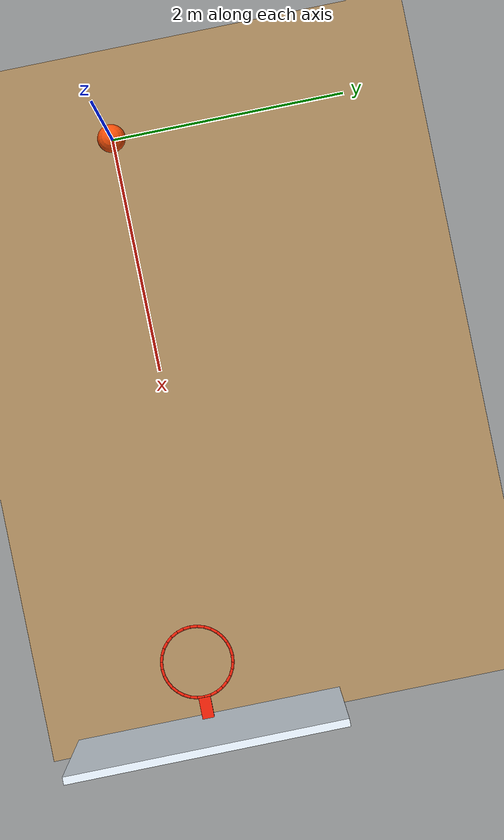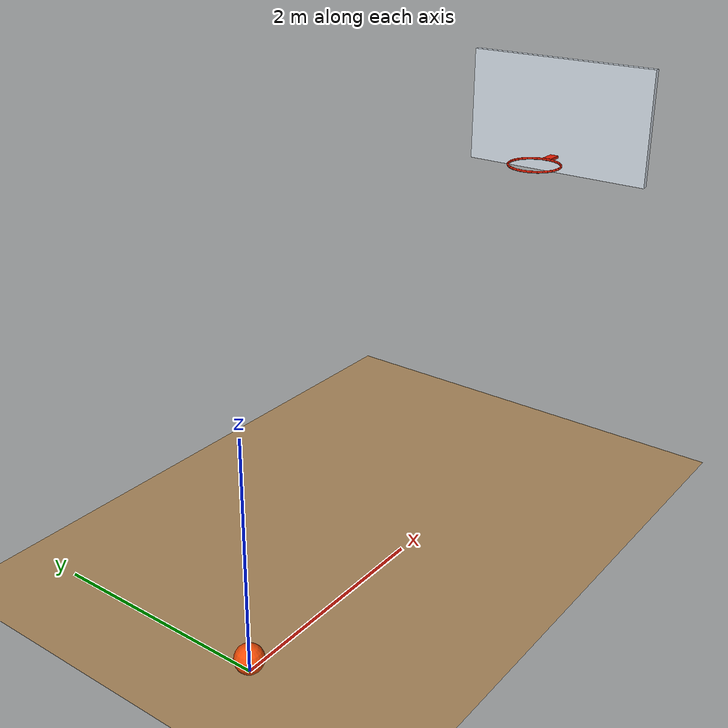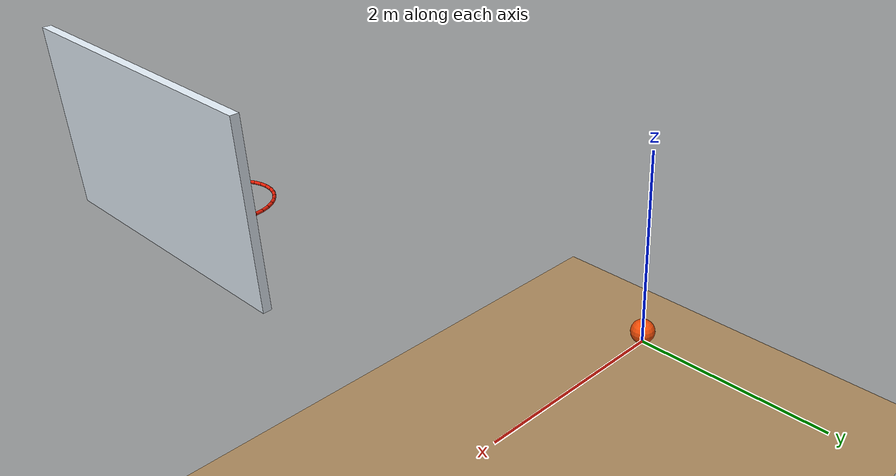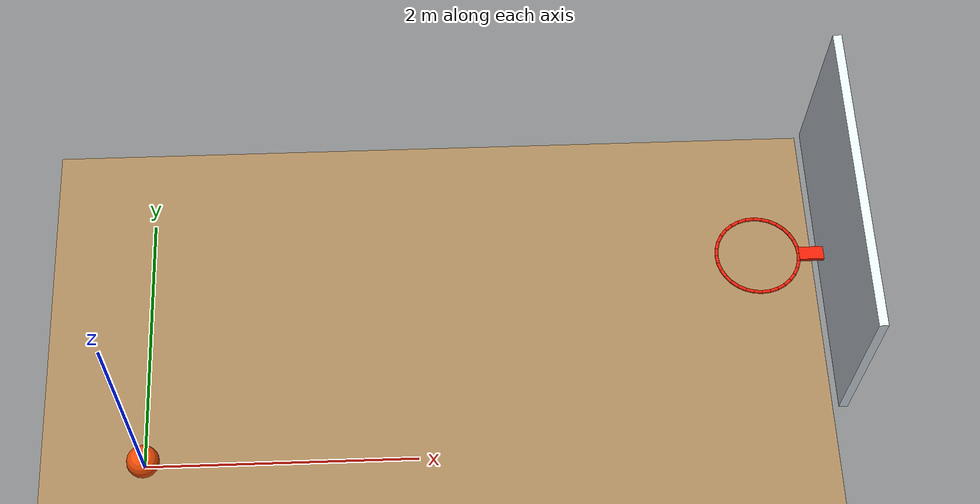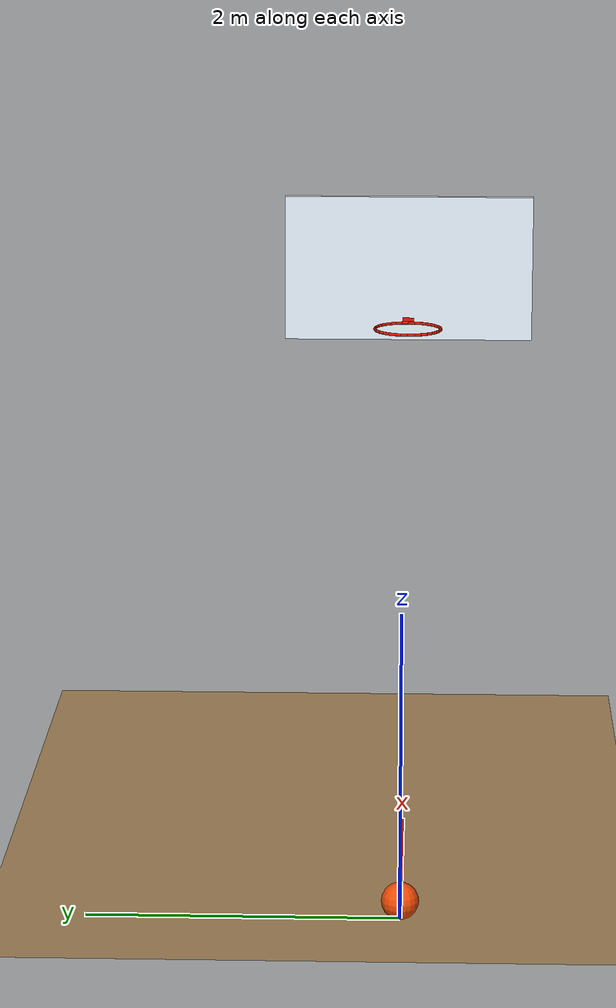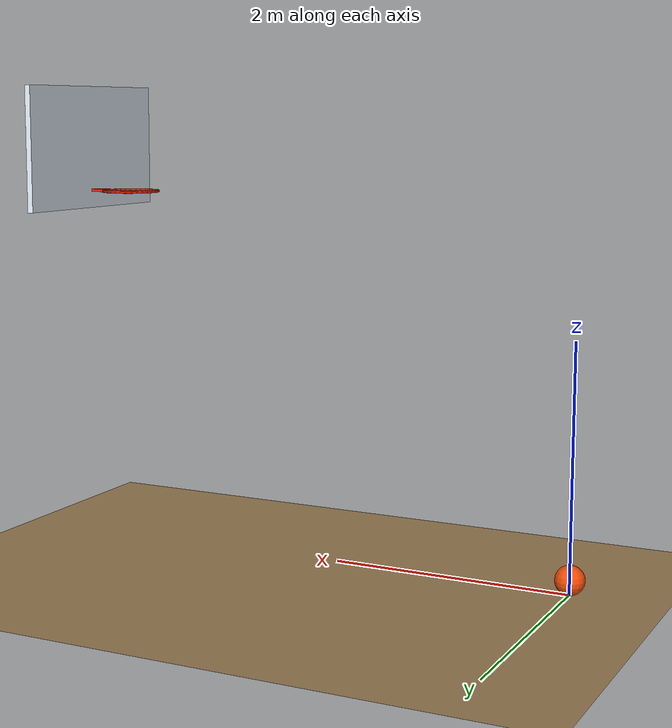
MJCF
<mujoco model="basketball_floor_launch">
  <compiler angle="radian"/>
  <option timestep="0.002"/>

  <visual>
    <global offwidth="1280" offheight="720"/>
  </visual>

  <worldbody>
    <light name="court_light" pos="2 -3 7" dir="0 0.4 -1" diffuse="0.8 0.8 0.8"/>
    <camera name="overview" pos="2 -9 4.4" xyaxes="1 0 0 0 0.33 0.944" fovy="50"/>

    <geom name="floor" type="plane" pos="0 0 0" size="10 6 0.1" friction="0.7 0.005 0.001" rgba="0.65 0.52 0.35 1"/>

    <!-- Size-7 basketball: 0.754 m circumference and 0.624 kg mass. -->
    <body name="ball" pos="0 0 0.12">
      <freejoint name="ball_free"/>
      <geom name="ball" type="sphere" size="0.12" mass="0.624" friction="0.8 0.005 0.001" rgba="0.95 0.30 0.025 1"/>
    </body>

    <!-- Rim center is 4 m horizontally from launch and 3.05 m above the floor. -->
    <!-- Capsules approximate a 0.4572 m clear-diameter rim with 20 mm steel tubing. -->
    <body name="hoop" pos="4 0 3.05">
      <geom name="rim_00" type="capsule" fromto="0.238600 0 0 0.234015 0.046549 0" size="0.01" rgba="0.9 0.12 0.025 1"/>
      <geom name="rim_01" type="capsule" fromto="0.234015 0.046549 0 0.220438 0.091308 0" size="0.01" rgba="0.9 0.12 0.025 1"/>
      <geom name="rim_02" type="capsule" fromto="0.220438 0.091308 0 0.198389 0.132559 0" size="0.01" rgba="0.9 0.12 0.025 1"/>
      <geom name="rim_03" type="capsule" fromto="0.198389 0.132559 0 0.168716 0.168716 0" size="0.01" rgba="0.9 0.12 0.025 1"/>
      <geom name="rim_04" type="capsule" fromto="0.168716 0.168716 0 0.132559 0.198389 0" size="0.01" rgba="0.9 0.12 0.025 1"/>
      <geom name="rim_05" type="capsule" fromto="0.132559 0.198389 0 0.091308 0.220438 0" size="0.01" rgba="0.9 0.12 0.025 1"/>
      <geom name="rim_06" type="capsule" fromto="0.091308 0.220438 0 0.046549 0.234015 0" size="0.01" rgba="0.9 0.12 0.025 1"/>
      <geom name="rim_07" type="capsule" fromto="0.046549 0.234015 0 0 0.238600 0" size="0.01" rgba="0.9 0.12 0.025 1"/>
      <geom name="rim_08" type="capsule" fromto="0 0.238600 0 -0.046549 0.234015 0" size="0.01" rgba="0.9 0.12 0.025 1"/>
      <geom name="rim_09" type="capsule" fromto="-0.046549 0.234015 0 -0.091308 0.220438 0" size="0.01" rgba="0.9 0.12 0.025 1"/>
      <geom name="rim_10" type="capsule" fromto="-0.091308 0.220438 0 -0.132559 0.198389 0" size="0.01" rgba="0.9 0.12 0.025 1"/>
      <geom name="rim_11" type="capsule" fromto="-0.132559 0.198389 0 -0.168716 0.168716 0" size="0.01" rgba="0.9 0.12 0.025 1"/>
      <geom name="rim_12" type="capsule" fromto="-0.168716 0.168716 0 -0.198389 0.132559 0" size="0.01" rgba="0.9 0.12 0.025 1"/>
      <geom name="rim_13" type="capsule" fromto="-0.198389 0.132559 0 -0.220438 0.091308 0" size="0.01" rgba="0.9 0.12 0.025 1"/>
      <geom name="rim_14" type="capsule" fromto="-0.220438 0.091308 0 -0.234015 0.046549 0" size="0.01" rgba="0.9 0.12 0.025 1"/>
      <geom name="rim_15" type="capsule" fromto="-0.234015 0.046549 0 -0.238600 0 0" size="0.01" rgba="0.9 0.12 0.025 1"/>
      <geom name="rim_16" type="capsule" fromto="-0.238600 0 0 -0.234015 -0.046549 0" size="0.01" rgba="0.9 0.12 0.025 1"/>
      <geom name="rim_17" type="capsule" fromto="-0.234015 -0.046549 0 -0.220438 -0.091308 0" size="0.01" rgba="0.9 0.12 0.025 1"/>
      <geom name="rim_18" type="capsule" fromto="-0.220438 -0.091308 0 -0.198389 -0.132559 0" size="0.01" rgba="0.9 0.12 0.025 1"/>
      <geom name="rim_19" type="capsule" fromto="-0.198389 -0.132559 0 -0.168716 -0.168716 0" size="0.01" rgba="0.9 0.12 0.025 1"/>
      <geom name="rim_20" type="capsule" fromto="-0.168716 -0.168716 0 -0.132559 -0.198389 0" size="0.01" rgba="0.9 0.12 0.025 1"/>
      <geom name="rim_21" type="capsule" fromto="-0.132559 -0.198389 0 -0.091308 -0.220438 0" size="0.01" rgba="0.9 0.12 0.025 1"/>
      <geom name="rim_22" type="capsule" fromto="-0.091308 -0.220438 0 -0.046549 -0.234015 0" size="0.01" rgba="0.9 0.12 0.025 1"/>
      <geom name="rim_23" type="capsule" fromto="-0.046549 -0.234015 0 0 -0.238600 0" size="0.01" rgba="0.9 0.12 0.025 1"/>
      <geom name="rim_24" type="capsule" fromto="0 -0.238600 0 0.046549 -0.234015 0" size="0.01" rgba="0.9 0.12 0.025 1"/>
      <geom name="rim_25" type="capsule" fromto="0.046549 -0.234015 0 0.091308 -0.220438 0" size="0.01" rgba="0.9 0.12 0.025 1"/>
      <geom name="rim_26" type="capsule" fromto="0.091308 -0.220438 0 0.132559 -0.198389 0" size="0.01" rgba="0.9 0.12 0.025 1"/>
      <geom name="rim_27" type="capsule" fromto="0.132559 -0.198389 0 0.168716 -0.168716 0" size="0.01" rgba="0.9 0.12 0.025 1"/>
      <geom name="rim_28" type="capsule" fromto="0.168716 -0.168716 0 0.198389 -0.132559 0" size="0.01" rgba="0.9 0.12 0.025 1"/>
      <geom name="rim_29" type="capsule" fromto="0.198389 -0.132559 0 0.220438 -0.091308 0" size="0.01" rgba="0.9 0.12 0.025 1"/>
      <geom name="rim_30" type="capsule" fromto="0.220438 -0.091308 0 0.234015 -0.046549 0" size="0.01" rgba="0.9 0.12 0.025 1"/>
      <geom name="rim_31" type="capsule" fromto="0.234015 -0.046549 0 0.238600 0 0" size="0.01" rgba="0.9 0.12 0.025 1"/>

      <geom name="backboard" type="box" pos="0.406 0 0.375" size="0.025 0.9 0.525" rgba="0.88 0.92 0.96 1"/>
      <geom name="bracket" type="box" pos="0.315 0 0" size="0.076 0.04 0.012" rgba="0.9 0.12 0.025 1"/>
    </body>
  </worldbody>

  <!-- Ballistic launch aimed through the rim on descent at approximately 1.4 s. -->
  <keyframe>
    <key name="start" qpos="0 0 0.12 1 0 0 0" qvel="2.857142857 0 8.959857143 0 0 0"/>
  </keyframe>
</mujoco>
